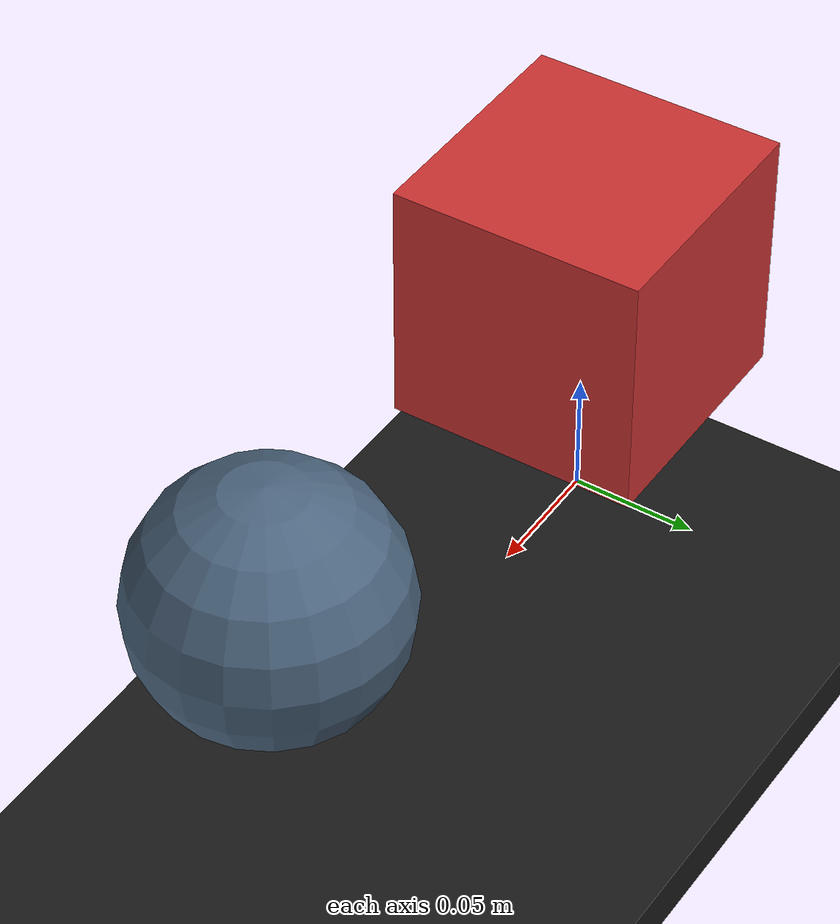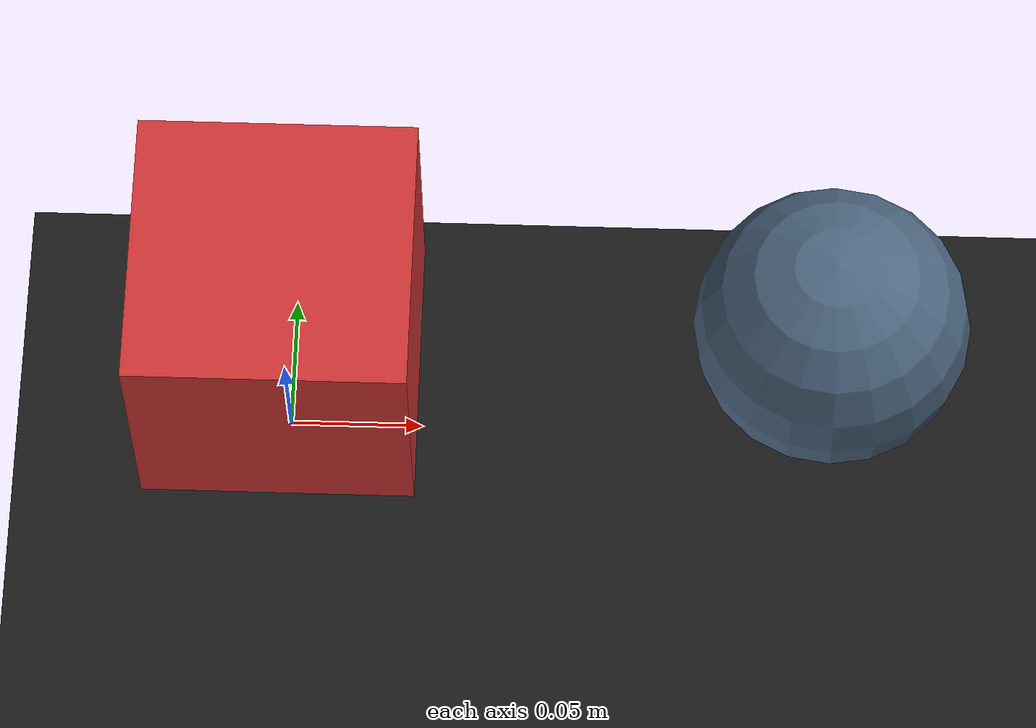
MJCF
<mujoco>
    <compiler angle="radian" />

    <!-- Define approximate colors directly on each geometry where needed -->
    <asset>
        <!-- Materials can be ignored as JAX frameworks typically don't support material properties in the same way -->
        <!-- However, color and transparency can be added directly to each geom -->
    </asset>

    <worldbody>
        <!-- Replace the plane with a thin box to simulate a floor -->
        <geom type="box" rgba="0.1 0.1 0.1 1" size="1 1 0.01" pos="0 0 -0.06"/>

        <!-- Example object replacement for "grab" and "object_col" classes -->
        <body name="grab_object" pos="0 0 0.1">
            <!-- Replace "mesh" with an approximated box -->
            <geom type="box" size="0.05 0.05 0.05" rgba="0.8 0.2 0.2 1.0" friction="1 0.5 0.01"/>
            <joint name="grab_joint" type="free" damping="0.001" armature="0.001" frictionloss="0.001" />
        </body>

        <body name="object_col" pos="0.2 0 0.1">
            <!-- Replace "mesh" with another approximated shape -->
            <geom type="sphere" size="0.05" rgba="0.3 0.4 0.5 1" friction="1 0.5 0.01" density="1250"/>
            <joint name="object_col_joint" type="free" damping="0.001" armature="0.001" frictionloss="0.001" />
        </body>
    </worldbody>

    <visual>
        <!-- Camera and global visual settings are often ignored or set differently in JAX-based frameworks -->
        <global fovy="25" />
    </visual>
</mujoco>
